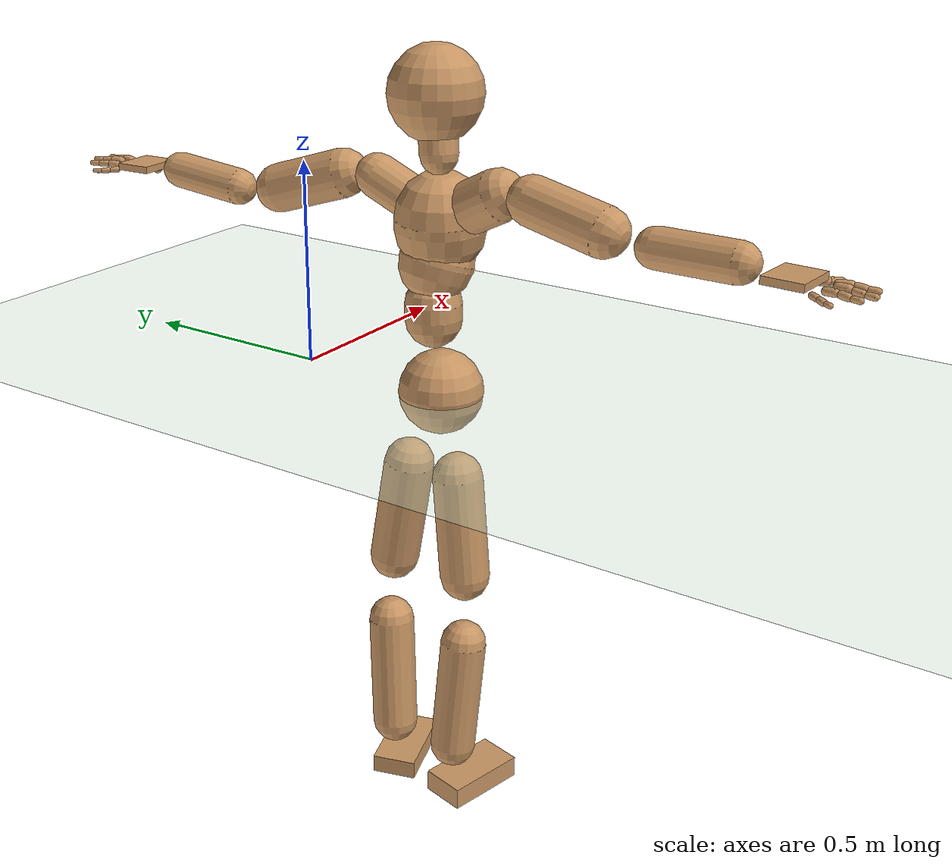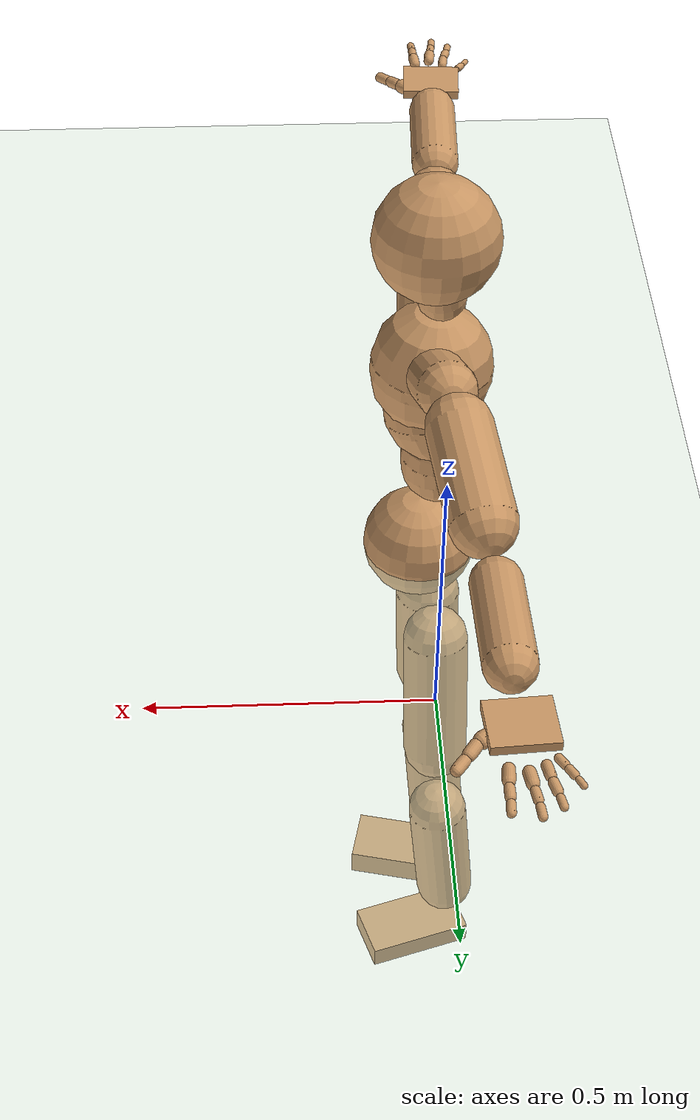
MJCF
<mujoco model="humanoid">
  <compiler coordinate="local" angle="radian"/>
  <default>
    <joint damping="0.0" armature="0.01" stiffness="0.0" limited="true"/>
    <geom conaffinity="1" condim="3" contype="7" margin="0.001" rgba="0.8 0.6 .4 1"/>
  </default>
  <asset>
    <texture type="skybox" builtin="gradient" rgb1=".4 .5 .6" rgb2="0 0 0" width="100" height="100"/>
    <texture builtin="flat" height="1278" mark="cross" markrgb="1 1 1" name="texgeom" random="0.01" rgb1="0.8 0.6 0.4" rgb2="0.8 0.6 0.4" type="cube" width="127"/>
    <texture builtin="checker" height="100" name="texplane" rgb1="0 0 0" rgb2="0.8 0.8 0.8" type="2d" width="100"/>
    <material name="MatPlane" reflectance="0.5" shininess="1" specular="1" texrepeat="60 60" texture="texplane"/>
    <material name="geom" texture="texgeom" texuniform="true"/>
  </asset>
  <worldbody>
    <light cutoff="100" diffuse="1 1 1" dir="-0 0 -1.3" directional="true" exponent="1" pos="0 0 1.3" specular=".1 .1 .1"/>
    <geom conaffinity="1" condim="3" name="floor" pos="0 0 0" rgba="0.8 0.9 0.8 1" size="100 100 .2" type="plane" material="MatPlane"/>
    <body name="Pelvis" pos="0.0009 -0.392 0.0056">
      <freejoint name="Pelvis"/>
      <geom type="sphere" contype="1" conaffinity="1" density="500" size="0.1016" pos="0.0000 0.0000 0.0000" name="Pelvis"/>
      <body name="L_Hip" pos="-0.0318 0.0552 -0.1006">
        <joint name="L_Hip_x" type="hinge" pos="0 0 0" axis="1 0 0" stiffness="800" damping="80" armature="0.02" range="-180.0000 180.0000"/>
        <joint name="L_Hip_y" type="hinge" pos="0 0 0" axis="0 1 0" stiffness="800" damping="80" armature="0.02" range="-180.0000 180.0000"/>
        <joint name="L_Hip_z" type="hinge" pos="0 0 0" axis="0 0 1" stiffness="800" damping="80" armature="0.02" range="-180.0000 180.0000"/>
        <geom type="capsule" contype="1" conaffinity="1" density="500" fromto="-0.0020 0.0137 -0.0879 -0.0078 0.0549 -0.3517" size="0.0608" name="L_Hip"/>
        <body name="L_Knee" pos="-0.0098 0.0686 -0.4396">
          <joint name="L_Knee_x" type="hinge" pos="0 0 0" axis="1 0 0" stiffness="800" damping="80" armature="0.02" range="-180.0000 180.0000"/>
          <joint name="L_Knee_y" type="hinge" pos="0 0 0" axis="0 1 0" stiffness="800" damping="80" armature="0.02" range="-180.0000 180.0000"/>
          <joint name="L_Knee_z" type="hinge" pos="0 0 0" axis="0 0 1" stiffness="800" damping="80" armature="0.02" range="-180.0000 180.0000"/>
          <geom type="capsule" contype="1" conaffinity="1" density="500" fromto="-0.0091 -0.0095 -0.0937 -0.0366 -0.0380 -0.3747" size="0.0568" name="L_Knee"/>
          <body name="L_Ankle" pos="-0.0457 -0.0475 -0.4684">
            <joint name="L_Ankle_x" type="hinge" pos="0 0 0" axis="1 0 0" stiffness="800" damping="80" armature="0.02" range="-180.0000 180.0000"/>
            <joint name="L_Ankle_y" type="hinge" pos="0 0 0" axis="0 1 0" stiffness="800" damping="80" armature="0.02" range="-180.0000 180.0000"/>
            <joint name="L_Ankle_z" type="hinge" pos="0 0 0" axis="0 0 1" stiffness="800" damping="80" armature="0.02" range="-180.0000 180.0000"/>
            <geom type="box" contype="1" conaffinity="1" density="500" pos="0.0748 0.0229 -0.0345" size="0.1034 0.0555 0.0233" quat="0.9890 0.0000 0.0000 0.1481" name="L_Ankle"/>
            <body name="L_Toe" pos="0.1496 0.0458 -0.0689">
              <joint name="L_Toe_x" type="hinge" pos="0 0 0" axis="1 0 0" stiffness="500" damping="50" armature="0.02" range="-180.0000 180.0000"/>
              <joint name="L_Toe_y" type="hinge" pos="0 0 0" axis="0 1 0" stiffness="500" damping="50" armature="0.02" range="-180.0000 180.0000"/>
              <joint name="L_Toe_z" type="hinge" pos="0 0 0" axis="0 0 1" stiffness="500" damping="50" armature="0.02" range="-180.0000 180.0000"/>
              <geom type="box" contype="1" conaffinity="1" density="500" pos="0.0000 0.0000 0.0334" size="0.0011 0.0027 0.0011" quat="0.9883 0.0000 0.0000 0.1522" name="L_Toe"/>
            </body>
          </body>
        </body>
      </body>
      <body name="R_Hip" pos="-0.0248 -0.0572 -0.1113">
        <joint name="R_Hip_x" type="hinge" pos="0 0 0" axis="1 0 0" stiffness="800" damping="80" armature="0.02" range="-180.0000 180.0000"/>
        <joint name="R_Hip_y" type="hinge" pos="0 0 0" axis="0 1 0" stiffness="800" damping="80" armature="0.02" range="-180.0000 180.0000"/>
        <joint name="R_Hip_z" type="hinge" pos="0 0 0" axis="0 0 1" stiffness="800" damping="80" armature="0.02" range="-180.0000 180.0000"/>
        <geom type="capsule" contype="1" conaffinity="1" density="500" fromto="-0.0036 -0.0103 -0.0842 -0.0142 -0.0410 -0.3369" size="0.0605" name="R_Hip"/>
        <body name="R_Knee" pos="-0.0178 -0.0513 -0.4211">
          <joint name="R_Knee_x" type="hinge" pos="0 0 0" axis="1 0 0" stiffness="800" damping="80" armature="0.02" range="-180.0000 180.0000"/>
          <joint name="R_Knee_y" type="hinge" pos="0 0 0" axis="0 1 0" stiffness="800" damping="80" armature="0.02" range="-180.0000 180.0000"/>
          <joint name="R_Knee_z" type="hinge" pos="0 0 0" axis="0 0 1" stiffness="800" damping="80" armature="0.02" range="-180.0000 180.0000"/>
          <geom type="capsule" contype="1" conaffinity="1" density="500" fromto="-0.0087 0.0038 -0.0968 -0.0350 0.0152 -0.3873" size="0.0562" name="R_Knee"/>
          <body name="R_Ankle" pos="-0.0437 0.019 -0.4842">
            <joint name="R_Ankle_x" type="hinge" pos="0 0 0" axis="1 0 0" stiffness="800" damping="80" armature="0.02" range="-180.0000 180.0000"/>
            <joint name="R_Ankle_y" type="hinge" pos="0 0 0" axis="0 1 0" stiffness="800" damping="80" armature="0.02" range="-180.0000 180.0000"/>
            <joint name="R_Ankle_z" type="hinge" pos="0 0 0" axis="0 0 1" stiffness="800" damping="80" armature="0.02" range="-180.0000 180.0000"/>
            <geom type="box" contype="1" conaffinity="1" density="500" pos="0.0781 -0.0183 -0.0338" size="0.1034 0.0555 0.0282" quat="0.9934 0.0000 0.0000 -0.1147" name="R_Ankle"/>
            <body name="R_Toe" pos="0.1562 -0.0366 -0.0675">
              <joint name="R_Toe_x" type="hinge" pos="0 0 0" axis="1 0 0" stiffness="500" damping="50" armature="0.02" range="-180.0000 180.0000"/>
              <joint name="R_Toe_y" type="hinge" pos="0 0 0" axis="0 1 0" stiffness="500" damping="50" armature="0.02" range="-180.0000 180.0000"/>
              <joint name="R_Toe_z" type="hinge" pos="0 0 0" axis="0 0 1" stiffness="500" damping="50" armature="0.02" range="-180.0000 180.0000"/>
              <geom type="box" contype="1" conaffinity="1" density="500" pos="0.0000 0.0000 0.0278" size="0.0011 0.0027 0.0011" quat="0.9942 0.0000 0.0000 -0.1073" name="R_Toe"/>
            </body>
          </body>
        </body>
      </body>
      <body name="Torso" pos="-0.0322 -0.0017 0.1203">
        <joint name="Torso_x" type="hinge" pos="0 0 0" axis="1 0 0" stiffness="1000" damping="100" armature="0.02" range="-180.0000 180.0000"/>
        <joint name="Torso_y" type="hinge" pos="0 0 0" axis="0 1 0" stiffness="1000" damping="100" armature="0.02" range="-180.0000 180.0000"/>
        <joint name="Torso_z" type="hinge" pos="0 0 0" axis="0 0 1" stiffness="1000" damping="100" armature="0.02" range="-180.0000 180.0000"/>
        <geom type="capsule" contype="1" conaffinity="1" density="500" fromto="0.0045 0.0055 0.1013 0.0030 0.0037 0.0675" size="0.067" name="Torso"/>
        <body name="Spine" pos="0.0076 0.0092 0.1688">
          <joint name="Spine_x" type="hinge" pos="0 0 0" axis="1 0 0" stiffness="1000" damping="100" armature="0.02" range="-180.0000 180.0000"/>
          <joint name="Spine_y" type="hinge" pos="0 0 0" axis="0 1 0" stiffness="1000" damping="100" armature="0.02" range="-180.0000 180.0000"/>
          <joint name="Spine_z" type="hinge" pos="0 0 0" axis="0 0 1" stiffness="1000" damping="100" armature="0.02" range="-180.0000 180.0000"/>
          <geom type="capsule" contype="1" conaffinity="1" density="500" fromto="0.0119 -0.0053 0.0384 0.0079 -0.0035 0.0256" size="0.0875" name="Spine"/>
          <body name="Chest" pos="0.0198 -0.0088 0.0639">
            <joint name="Chest_x" type="hinge" pos="0 0 0" axis="1 0 0" stiffness="1000" damping="100" armature="0.02" range="-180.0000 180.0000"/>
            <joint name="Chest_y" type="hinge" pos="0 0 0" axis="0 1 0" stiffness="1000" damping="100" armature="0.02" range="-180.0000 180.0000"/>
            <joint name="Chest_z" type="hinge" pos="0 0 0" axis="0 0 1" stiffness="1000" damping="100" armature="0.02" range="-180.0000 180.0000"/>
            <geom type="capsule" contype="1" conaffinity="1" density="500" fromto="-0.0051 -0.0018 0.0682 -0.0034 -0.0012 0.0455" size="0.1062" name="Chest"/>
            <body name="Neck" pos="-0.0196 -0.0084 0.1765">
              <joint name="Neck_x" type="hinge" pos="0 0 0" axis="1 0 0" stiffness="500" damping="50" armature="0.02" range="-180.0000 180.0000"/>
              <joint name="Neck_y" type="hinge" pos="0 0 0" axis="0 1 0" stiffness="500" damping="50" armature="0.02" range="-180.0000 180.0000"/>
              <joint name="Neck_z" type="hinge" pos="0 0 0" axis="0 0 1" stiffness="500" damping="50" armature="0.02" range="-180.0000 180.0000"/>
              <geom type="capsule" contype="1" conaffinity="1" density="500" fromto="0.0037 0.0047 0.0322 0.0146 0.0190 0.1286" size="0.0441" name="Neck"/>
              <body name="Head" pos="0.0183 0.0237 0.1608">
                <joint name="Head_x" type="hinge" pos="0 0 0" axis="1 0 0" stiffness="500" damping="50" armature="0.02" range="-180.0000 180.0000"/>
                <joint name="Head_y" type="hinge" pos="0 0 0" axis="0 1 0" stiffness="500" damping="50" armature="0.02" range="-180.0000 180.0000"/>
                <joint name="Head_z" type="hinge" pos="0 0 0" axis="0 0 1" stiffness="500" damping="50" armature="0.02" range="-180.0000 180.0000"/>
                <geom type="sphere" contype="1" conaffinity="1" density="500" size="0.1085" pos="0.0000 0.0000 0.0000" name="Head"/>
              </body>
            </body>
            <body name="L_Thorax" pos="-0.0008 0.0444 0.0822">
              <joint name="L_Thorax_x" type="hinge" pos="0 0 0" axis="1 0 0" stiffness="500" damping="50" armature="0.02" range="-180.0000 180.0000"/>
              <joint name="L_Thorax_y" type="hinge" pos="0 0 0" axis="0 1 0" stiffness="500" damping="50" armature="0.02" range="-180.0000 180.0000"/>
              <joint name="L_Thorax_z" type="hinge" pos="0 0 0" axis="0 0 1" stiffness="500" damping="50" armature="0.02" range="-180.0000 180.0000"/>
              <geom type="capsule" contype="1" conaffinity="1" density="500" fromto="-0.0035 0.0300 0.0147 -0.0138 0.1200 0.0588" size="0.0513" name="L_Thorax"/>
              <body name="L_Shoulder" pos="-0.0173 0.15 0.0735">
                <joint name="L_Shoulder_x" type="hinge" pos="0 0 0" axis="1 0 0" stiffness="500" damping="50" armature="0.02" range="-180.0000 180.0000"/>
                <joint name="L_Shoulder_y" type="hinge" pos="0 0 0" axis="0 1 0" stiffness="500" damping="50" armature="0.02" range="-180.0000 180.0000"/>
                <joint name="L_Shoulder_z" type="hinge" pos="0 0 0" axis="0 0 1" stiffness="500" damping="50" armature="0.02" range="-180.0000 180.0000"/>
                <geom type="capsule" contype="1" conaffinity="1" density="500" fromto="-0.0086 0.0570 -0.0177 -0.0343 0.2278 -0.0709" size="0.057" name="L_Shoulder"/>
                <body name="L_Elbow" pos="-0.0429 0.2848 -0.0886">
                  <joint name="L_Elbow_x" type="hinge" pos="0 0 0" axis="1 0 0" stiffness="500" damping="50" armature="0.02" range="-720.0000 720.0000"/>
                  <joint name="L_Elbow_y" type="hinge" pos="0 0 0" axis="0 1 0" stiffness="500" damping="50" armature="0.02" range="-720.0000 720.0000"/>
                  <joint name="L_Elbow_z" type="hinge" pos="0 0 0" axis="0 0 1" stiffness="500" damping="50" armature="0.02" range="-720.0000 720.0000"/>
                  <geom type="capsule" contype="1" conaffinity="1" density="500" fromto="-0.0005 0.0623 0.0057 -0.0019 0.2493 0.0228" size="0.0428" name="L_Elbow"/>
                  <body name="L_Wrist" pos="-0.0023 0.3116 0.0285">
                    <joint name="L_Wrist_x" type="hinge" pos="0 0 0" axis="1 0 0" stiffness="300" damping="30" armature="0.02" range="-180.0000 180.0000"/>
                    <joint name="L_Wrist_y" type="hinge" pos="0 0 0" axis="0 1 0" stiffness="300" damping="30" armature="0.02" range="-180.0000 180.0000"/>
                    <joint name="L_Wrist_z" type="hinge" pos="0 0 0" axis="0 0 1" stiffness="300" damping="30" armature="0.02" range="-180.0000 180.0000"/>
                    <geom type="box" contype="1" conaffinity="1" density="500" pos="-0.0033 0.0529 -0.0069" size="0.0451 0.0522 0.0083" quat="0.7287 0.0000 0.0000 -0.6848" name="L_Wrist"/>
                    <body name="L_Index1" pos="0.0217 0.1231 -0.011">
                      <joint name="L_Index1_x" type="hinge" pos="0 0 0" axis="1 0 0" stiffness="100" damping="10" armature="0.02" range="-180.0000 180.0000"/>
                      <joint name="L_Index1_y" type="hinge" pos="0 0 0" axis="0 1 0" stiffness="100" damping="10" armature="0.02" range="-180.0000 180.0000"/>
                      <joint name="L_Index1_z" type="hinge" pos="0 0 0" axis="0 0 1" stiffness="100" damping="10" armature="0.02" range="-180.0000 180.0000"/>
                      <geom type="capsule" contype="1" conaffinity="1" density="500" fromto="0.0007 0.0072 0.0003 0.0028 0.0289 0.0014" size="0.0099" name="L_Index1"/>
                      <body name="L_Index2" pos="0.0035 0.0362 0.0017">
                        <joint name="L_Index2_x" type="hinge" pos="0 0 0" axis="1 0 0" stiffness="100" damping="10" armature="0.02" range="-180.0000 180.0000"/>
                        <joint name="L_Index2_y" type="hinge" pos="0 0 0" axis="0 1 0" stiffness="100" damping="10" armature="0.02" range="-180.0000 180.0000"/>
                        <joint name="L_Index2_z" type="hinge" pos="0 0 0" axis="0 0 1" stiffness="100" damping="10" armature="0.02" range="-180.0000 180.0000"/>
                        <geom type="capsule" contype="1" conaffinity="1" density="500" fromto="-0.0001 0.0051 -0.0006 -0.0003 0.0204 -0.0023" size="0.0082" name="L_Index2"/>
                        <body name="L_Index3" pos="-0.0003 0.0256 -0.0029">
                          <joint name="L_Index3_x" type="hinge" pos="0 0 0" axis="1 0 0" stiffness="100" damping="10" armature="0.02" range="-180.0000 180.0000"/>
                          <joint name="L_Index3_y" type="hinge" pos="0 0 0" axis="0 1 0" stiffness="100" damping="10" armature="0.02" range="-180.0000 180.0000"/>
                          <joint name="L_Index3_z" type="hinge" pos="0 0 0" axis="0 0 1" stiffness="100" damping="10" armature="0.02" range="-180.0000 180.0000"/>
                          <geom type="capsule" contype="1" conaffinity="1" density="500" fromto="0.0003 0.0055 -0.0002 0.0013 0.0220 -0.0007" size="0.0071" name="L_Index3"/>
                        </body>
                      </body>
                    </body>
                    <body name="L_Middle1" pos="-0.0044 0.1323 -0.008">
                      <joint name="L_Middle1_x" type="hinge" pos="0 0 0" axis="1 0 0" stiffness="100" damping="10" armature="0.02" range="-180.0000 180.0000"/>
                      <joint name="L_Middle1_y" type="hinge" pos="0 0 0" axis="0 1 0" stiffness="100" damping="10" armature="0.02" range="-180.0000 180.0000"/>
                      <joint name="L_Middle1_z" type="hinge" pos="0 0 0" axis="0 0 1" stiffness="100" damping="10" armature="0.02" range="-180.0000 180.0000"/>
                      <geom type="capsule" contype="1" conaffinity="1" density="500" fromto="-0.0010 0.0069 0.0001 -0.0038 0.0276 0.0003" size="0.0101" name="L_Middle1"/>
                      <body name="L_Middle2" pos="-0.0048 0.0346 0.0003">
                        <joint name="L_Middle2_x" type="hinge" pos="0 0 0" axis="1 0 0" stiffness="100" damping="10" armature="0.02" range="-180.0000 180.0000"/>
                        <joint name="L_Middle2_y" type="hinge" pos="0 0 0" axis="0 1 0" stiffness="100" damping="10" armature="0.02" range="-180.0000 180.0000"/>
                        <joint name="L_Middle2_z" type="hinge" pos="0 0 0" axis="0 0 1" stiffness="100" damping="10" armature="0.02" range="-180.0000 180.0000"/>
                        <geom type="capsule" contype="1" conaffinity="1" density="500" fromto="-0.0009 0.0053 -0.0006 -0.0038 0.0213 -0.0022" size="0.0076" name="L_Middle2"/>
                        <body name="L_Middle3" pos="-0.0047 0.0266 -0.0028">
                          <joint name="L_Middle3_x" type="hinge" pos="0 0 0" axis="1 0 0" stiffness="100" damping="10" armature="0.02" range="-180.0000 180.0000"/>
                          <joint name="L_Middle3_y" type="hinge" pos="0 0 0" axis="0 1 0" stiffness="100" damping="10" armature="0.02" range="-180.0000 180.0000"/>
                          <joint name="L_Middle3_z" type="hinge" pos="0 0 0" axis="0 0 1" stiffness="100" damping="10" armature="0.02" range="-180.0000 180.0000"/>
                          <geom type="capsule" contype="1" conaffinity="1" density="500" fromto="-0.0005 0.0057 -0.0002 -0.0022 0.0229 -0.0006" size="0.0069" name="L_Middle3"/>
                        </body>
                      </body>
                    </body>
                    <body name="L_Pinky1" pos="-0.049 0.1036 -0.0169">
                      <joint name="L_Pinky1_x" type="hinge" pos="0 0 0" axis="1 0 0" stiffness="100" damping="10" armature="0.02" range="-180.0000 180.0000"/>
                      <joint name="L_Pinky1_y" type="hinge" pos="0 0 0" axis="0 1 0" stiffness="100" damping="10" armature="0.02" range="-180.0000 180.0000"/>
                      <joint name="L_Pinky1_z" type="hinge" pos="0 0 0" axis="0 0 1" stiffness="100" damping="10" armature="0.02" range="-180.0000 180.0000"/>
                      <geom type="capsule" contype="1" conaffinity="1" density="500" fromto="-0.0025 0.0037 -0.0004 -0.0099 0.0147 -0.0015" size="0.0072" name="L_Pinky1"/>
                      <body name="L_Pinky2" pos="-0.0124 0.0184 -0.0019">
                        <joint name="L_Pinky2_x" type="hinge" pos="0 0 0" axis="1 0 0" stiffness="100" damping="10" armature="0.02" range="-180.0000 180.0000"/>
                        <joint name="L_Pinky2_y" type="hinge" pos="0 0 0" axis="0 1 0" stiffness="100" damping="10" armature="0.02" range="-180.0000 180.0000"/>
                        <joint name="L_Pinky2_z" type="hinge" pos="0 0 0" axis="0 0 1" stiffness="100" damping="10" armature="0.02" range="-180.0000 180.0000"/>
                        <geom type="capsule" contype="1" conaffinity="1" density="500" fromto="-0.0024 0.0036 -0.0004 -0.0095 0.0143 -0.0017" size="0.0069" name="L_Pinky2"/>
                        <body name="L_Pinky3" pos="-0.0119 0.0179 -0.0021">
                          <joint name="L_Pinky3_x" type="hinge" pos="0 0 0" axis="1 0 0" stiffness="100" damping="10" armature="0.02" range="-180.0000 180.0000"/>
                          <joint name="L_Pinky3_y" type="hinge" pos="0 0 0" axis="0 1 0" stiffness="100" damping="10" armature="0.02" range="-180.0000 180.0000"/>
                          <joint name="L_Pinky3_z" type="hinge" pos="0 0 0" axis="0 0 1" stiffness="100" damping="10" armature="0.02" range="-180.0000 180.0000"/>
                          <geom type="capsule" contype="1" conaffinity="1" density="500" fromto="-0.0020 0.0040 -0.0000 -0.0079 0.0159 -0.0001" size="0.0053" name="L_Pinky3"/>
                        </body>
                      </body>
                    </body>
                    <body name="L_Ring1" pos="-0.0305 0.1189 -0.011">
                      <joint name="L_Ring1_x" type="hinge" pos="0 0 0" axis="1 0 0" stiffness="100" damping="10" armature="0.02" range="-180.0000 180.0000"/>
                      <joint name="L_Ring1_y" type="hinge" pos="0 0 0" axis="0 1 0" stiffness="100" damping="10" armature="0.02" range="-180.0000 180.0000"/>
                      <joint name="L_Ring1_z" type="hinge" pos="0 0 0" axis="0 0 1" stiffness="100" damping="10" armature="0.02" range="-180.0000 180.0000"/>
                      <geom type="capsule" contype="1" conaffinity="1" density="500" fromto="-0.0011 0.0064 0.0002 -0.0043 0.0257 0.0007" size="0.0086" name="L_Ring1"/>
                      <body name="L_Ring2" pos="-0.0054 0.0322 0.0009">
                        <joint name="L_Ring2_x" type="hinge" pos="0 0 0" axis="1 0 0" stiffness="100" damping="10" armature="0.02" range="-180.0000 180.0000"/>
                        <joint name="L_Ring2_y" type="hinge" pos="0 0 0" axis="0 1 0" stiffness="100" damping="10" armature="0.02" range="-180.0000 180.0000"/>
                        <joint name="L_Ring2_z" type="hinge" pos="0 0 0" axis="0 0 1" stiffness="100" damping="10" armature="0.02" range="-180.0000 180.0000"/>
                        <geom type="capsule" contype="1" conaffinity="1" density="500" fromto="-0.0015 0.0052 -0.0005 -0.0059 0.0207 -0.0018" size="0.0081" name="L_Ring2"/>
                        <body name="L_Ring3" pos="-0.0074 0.0258 -0.0023">
                          <joint name="L_Ring3_x" type="hinge" pos="0 0 0" axis="1 0 0" stiffness="100" damping="10" armature="0.02" range="-180.0000 180.0000"/>
                          <joint name="L_Ring3_y" type="hinge" pos="0 0 0" axis="0 1 0" stiffness="100" damping="10" armature="0.02" range="-180.0000 180.0000"/>
                          <joint name="L_Ring3_z" type="hinge" pos="0 0 0" axis="0 0 1" stiffness="100" damping="10" armature="0.02" range="-180.0000 180.0000"/>
                          <geom type="capsule" contype="1" conaffinity="1" density="500" fromto="-0.0011 0.0056 -0.0001 -0.0043 0.0223 -0.0002" size="0.0064" name="L_Ring3"/>
                        </body>
                      </body>
                    </body>
                    <body name="L_Thumb1" pos="0.0294 0.0509 -0.0224">
                      <joint name="L_Thumb1_x" type="hinge" pos="0 0 0" axis="1 0 0" stiffness="100" damping="10" armature="0.02" range="-180.0000 180.0000"/>
                      <joint name="L_Thumb1_y" type="hinge" pos="0 0 0" axis="0 1 0" stiffness="100" damping="10" armature="0.02" range="-180.0000 180.0000"/>
                      <joint name="L_Thumb1_z" type="hinge" pos="0 0 0" axis="0 0 1" stiffness="100" damping="10" armature="0.02" range="-180.0000 180.0000"/>
                      <geom type="capsule" contype="1" conaffinity="1" density="500" fromto="0.0058 0.0040 0.0003 0.0234 0.0159 0.0012" size="0.0138" name="L_Thumb1"/>
                      <body name="L_Thumb2" pos="0.0292 0.0199 0.0015">
                        <joint name="L_Thumb2_x" type="hinge" pos="0 0 0" axis="1 0 0" stiffness="100" damping="10" armature="0.02" range="-180.0000 180.0000"/>
                        <joint name="L_Thumb2_y" type="hinge" pos="0 0 0" axis="0 1 0" stiffness="100" damping="10" armature="0.02" range="-180.0000 180.0000"/>
                        <joint name="L_Thumb2_z" type="hinge" pos="0 0 0" axis="0 0 1" stiffness="100" damping="10" armature="0.02" range="-180.0000 180.0000"/>
                        <geom type="capsule" contype="1" conaffinity="1" density="500" fromto="0.0037 0.0048 -0.0010 0.0146 0.0191 -0.0039" size="0.0108" name="L_Thumb2"/>
                        <body name="L_Thumb3" pos="0.0183 0.0238 -0.0049">
                          <joint name="L_Thumb3_x" type="hinge" pos="0 0 0" axis="1 0 0" stiffness="100" damping="10" armature="0.02" range="-180.0000 180.0000"/>
                          <joint name="L_Thumb3_y" type="hinge" pos="0 0 0" axis="0 1 0" stiffness="100" damping="10" armature="0.02" range="-180.0000 180.0000"/>
                          <joint name="L_Thumb3_z" type="hinge" pos="0 0 0" axis="0 0 1" stiffness="100" damping="10" armature="0.02" range="-180.0000 180.0000"/>
                          <geom type="capsule" contype="1" conaffinity="1" density="500" fromto="0.0041 0.0052 -0.0006 0.0162 0.0207 -0.0023" size="0.0097" name="L_Thumb3"/>
                        </body>
                      </body>
                    </body>
                  </body>
                </body>
              </body>
            </body>
            <body name="R_Thorax" pos="-0.0051 -0.0452 0.0825">
              <joint name="R_Thorax_x" type="hinge" pos="0 0 0" axis="1 0 0" stiffness="500" damping="50" armature="0.02" range="-180.0000 180.0000"/>
              <joint name="R_Thorax_y" type="hinge" pos="0 0 0" axis="0 1 0" stiffness="500" damping="50" armature="0.02" range="-180.0000 180.0000"/>
              <joint name="R_Thorax_z" type="hinge" pos="0 0 0" axis="0 0 1" stiffness="500" damping="50" armature="0.02" range="-180.0000 180.0000"/>
              <geom type="capsule" contype="1" conaffinity="1" density="500" fromto="-0.0022 -0.0279 0.0143 -0.0087 -0.1117 0.0573" size="0.0601" name="R_Thorax"/>
              <body name="R_Shoulder" pos="-0.0109 -0.1396 0.0716">
                <joint name="R_Shoulder_x" type="hinge" pos="0 0 0" axis="1 0 0" stiffness="500" damping="50" armature="0.02" range="-180.0000 180.0000"/>
                <joint name="R_Shoulder_y" type="hinge" pos="0 0 0" axis="0 1 0" stiffness="500" damping="50" armature="0.02" range="-180.0000 180.0000"/>
                <joint name="R_Shoulder_z" type="hinge" pos="0 0 0" axis="0 0 1" stiffness="500" damping="50" armature="0.02" range="-180.0000 180.0000"/>
                <geom type="capsule" contype="1" conaffinity="1" density="500" fromto="-0.0067 -0.0610 -0.0115 -0.0267 -0.2440 -0.0460" size="0.056" name="R_Shoulder"/>
                <body name="R_Elbow" pos="-0.0333 -0.3049 -0.0575">
                  <joint name="R_Elbow_x" type="hinge" pos="0 0 0" axis="1 0 0" stiffness="500" damping="50" armature="0.02" range="-720.0000 720.0000"/>
                  <joint name="R_Elbow_y" type="hinge" pos="0 0 0" axis="0 1 0" stiffness="500" damping="50" armature="0.02" range="-720.0000 720.0000"/>
                  <joint name="R_Elbow_z" type="hinge" pos="0 0 0" axis="0 0 1" stiffness="500" damping="50" armature="0.02" range="-720.0000 720.0000"/>
                  <geom type="capsule" contype="1" conaffinity="1" density="500" fromto="-0.0026 -0.0602 0.0006 -0.0105 -0.2408 0.0022" size="0.044" name="R_Elbow"/>
                  <body name="R_Wrist" pos="-0.0131 -0.301 0.0028">
                    <joint name="R_Wrist_x" type="hinge" pos="0 0 0" axis="1 0 0" stiffness="300" damping="30" armature="0.02" range="-180.0000 180.0000"/>
                    <joint name="R_Wrist_y" type="hinge" pos="0 0 0" axis="0 1 0" stiffness="300" damping="30" armature="0.02" range="-180.0000 180.0000"/>
                    <joint name="R_Wrist_z" type="hinge" pos="0 0 0" axis="0 0 1" stiffness="300" damping="30" armature="0.02" range="-180.0000 180.0000"/>
                    <geom type="box" contype="1" conaffinity="1" density="500" pos="-0.0037 -0.0525 -0.0087" size="0.0451 0.054 0.0085" quat="0.7316 0.0000 0.0000 0.6817" name="R_Wrist"/>
                    <body name="R_Index1" pos="0.0209 -0.1225 -0.0146">
                      <joint name="R_Index1_x" type="hinge" pos="0 0 0" axis="1 0 0" stiffness="100" damping="10" armature="0.02" range="-180.0000 180.0000"/>
                      <joint name="R_Index1_y" type="hinge" pos="0 0 0" axis="0 1 0" stiffness="100" damping="10" armature="0.02" range="-180.0000 180.0000"/>
                      <joint name="R_Index1_z" type="hinge" pos="0 0 0" axis="0 0 1" stiffness="100" damping="10" armature="0.02" range="-180.0000 180.0000"/>
                      <geom type="capsule" contype="1" conaffinity="1" density="500" fromto="0.0007 -0.0072 0.0003 0.0028 -0.0289 0.0014" size="0.0099" name="R_Index1"/>
                      <body name="R_Index2" pos="0.0035 -0.0362 0.0017">
                        <joint name="R_Index2_x" type="hinge" pos="0 0 0" axis="1 0 0" stiffness="100" damping="10" armature="0.02" range="-180.0000 180.0000"/>
                        <joint name="R_Index2_y" type="hinge" pos="0 0 0" axis="0 1 0" stiffness="100" damping="10" armature="0.02" range="-180.0000 180.0000"/>
                        <joint name="R_Index2_z" type="hinge" pos="0 0 0" axis="0 0 1" stiffness="100" damping="10" armature="0.02" range="-180.0000 180.0000"/>
                        <geom type="capsule" contype="1" conaffinity="1" density="500" fromto="-0.0001 -0.0051 -0.0006 -0.0003 -0.0204 -0.0023" size="0.0082" name="R_Index2"/>
                        <body name="R_Index3" pos="-0.0003 -0.0256 -0.0029">
                          <joint name="R_Index3_x" type="hinge" pos="0 0 0" axis="1 0 0" stiffness="100" damping="10" armature="0.02" range="-180.0000 180.0000"/>
                          <joint name="R_Index3_y" type="hinge" pos="0 0 0" axis="0 1 0" stiffness="100" damping="10" armature="0.02" range="-180.0000 180.0000"/>
                          <joint name="R_Index3_z" type="hinge" pos="0 0 0" axis="0 0 1" stiffness="100" damping="10" armature="0.02" range="-180.0000 180.0000"/>
                          <geom type="capsule" contype="1" conaffinity="1" density="500" fromto="0.0003 -0.0047 -0.0002 0.0013 -0.0188 -0.0007" size="0.0073" name="R_Index3"/>
                        </body>
                      </body>
                    </body>
                    <body name="R_Middle1" pos="-0.0053 -0.1316 -0.0116">
                      <joint name="R_Middle1_x" type="hinge" pos="0 0 0" axis="1 0 0" stiffness="100" damping="10" armature="0.02" range="-180.0000 180.0000"/>
                      <joint name="R_Middle1_y" type="hinge" pos="0 0 0" axis="0 1 0" stiffness="100" damping="10" armature="0.02" range="-180.0000 180.0000"/>
                      <joint name="R_Middle1_z" type="hinge" pos="0 0 0" axis="0 0 1" stiffness="100" damping="10" armature="0.02" range="-180.0000 180.0000"/>
                      <geom type="capsule" contype="1" conaffinity="1" density="500" fromto="-0.0010 -0.0069 0.0001 -0.0038 -0.0276 0.0003" size="0.0101" name="R_Middle1"/>
                      <body name="R_Middle2" pos="-0.0048 -0.0346 0.0003">
                        <joint name="R_Middle2_x" type="hinge" pos="0 0 0" axis="1 0 0" stiffness="100" damping="10" armature="0.02" range="-180.0000 180.0000"/>
                        <joint name="R_Middle2_y" type="hinge" pos="0 0 0" axis="0 1 0" stiffness="100" damping="10" armature="0.02" range="-180.0000 180.0000"/>
                        <joint name="R_Middle2_z" type="hinge" pos="0 0 0" axis="0 0 1" stiffness="100" damping="10" armature="0.02" range="-180.0000 180.0000"/>
                        <geom type="capsule" contype="1" conaffinity="1" density="500" fromto="-0.0009 -0.0053 -0.0006 -0.0038 -0.0213 -0.0022" size="0.0076" name="R_Middle2"/>
                        <body name="R_Middle3" pos="-0.0047 -0.0266 -0.0028">
                          <joint name="R_Middle3_x" type="hinge" pos="0 0 0" axis="1 0 0" stiffness="100" damping="10" armature="0.02" range="-180.0000 180.0000"/>
                          <joint name="R_Middle3_y" type="hinge" pos="0 0 0" axis="0 1 0" stiffness="100" damping="10" armature="0.02" range="-180.0000 180.0000"/>
                          <joint name="R_Middle3_z" type="hinge" pos="0 0 0" axis="0 0 1" stiffness="100" damping="10" armature="0.02" range="-180.0000 180.0000"/>
                          <geom type="capsule" contype="1" conaffinity="1" density="500" fromto="-0.0005 -0.0049 -0.0002 -0.0022 -0.0197 -0.0006" size="0.0071" name="R_Middle3"/>
                        </body>
                      </body>
                    </body>
                    <body name="R_Pinky1" pos="-0.0499 -0.1029 -0.0205">
                      <joint name="R_Pinky1_x" type="hinge" pos="0 0 0" axis="1 0 0" stiffness="100" damping="10" armature="0.02" range="-180.0000 180.0000"/>
                      <joint name="R_Pinky1_y" type="hinge" pos="0 0 0" axis="0 1 0" stiffness="100" damping="10" armature="0.02" range="-180.0000 180.0000"/>
                      <joint name="R_Pinky1_z" type="hinge" pos="0 0 0" axis="0 0 1" stiffness="100" damping="10" armature="0.02" range="-180.0000 180.0000"/>
                      <geom type="capsule" contype="1" conaffinity="1" density="500" fromto="-0.0025 -0.0037 -0.0004 -0.0099 -0.0147 -0.0015" size="0.0072" name="R_Pinky1"/>
                      <body name="R_Pinky2" pos="-0.0124 -0.0184 -0.0019">
                        <joint name="R_Pinky2_x" type="hinge" pos="0 0 0" axis="1 0 0" stiffness="100" damping="10" armature="0.02" range="-180.0000 180.0000"/>
                        <joint name="R_Pinky2_y" type="hinge" pos="0 0 0" axis="0 1 0" stiffness="100" damping="10" armature="0.02" range="-180.0000 180.0000"/>
                        <joint name="R_Pinky2_z" type="hinge" pos="0 0 0" axis="0 0 1" stiffness="100" damping="10" armature="0.02" range="-180.0000 180.0000"/>
                        <geom type="capsule" contype="1" conaffinity="1" density="500" fromto="-0.0024 -0.0036 -0.0004 -0.0095 -0.0143 -0.0017" size="0.0069" name="R_Pinky2"/>
                        <body name="R_Pinky3" pos="-0.0119 -0.0179 -0.0021">
                          <joint name="R_Pinky3_x" type="hinge" pos="0 0 0" axis="1 0 0" stiffness="100" damping="10" armature="0.02" range="-180.0000 180.0000"/>
                          <joint name="R_Pinky3_y" type="hinge" pos="0 0 0" axis="0 1 0" stiffness="100" damping="10" armature="0.02" range="-180.0000 180.0000"/>
                          <joint name="R_Pinky3_z" type="hinge" pos="0 0 0" axis="0 0 1" stiffness="100" damping="10" armature="0.02" range="-180.0000 180.0000"/>
                          <geom type="capsule" contype="1" conaffinity="1" density="500" fromto="-0.0020 -0.0032 -0.0000 -0.0079 -0.0127 -0.0001" size="0.0056" name="R_Pinky3"/>
                        </body>
                      </body>
                    </body>
                    <body name="R_Ring1" pos="-0.0314 -0.1182 -0.0146">
                      <joint name="R_Ring1_x" type="hinge" pos="0 0 0" axis="1 0 0" stiffness="100" damping="10" armature="0.02" range="-180.0000 180.0000"/>
                      <joint name="R_Ring1_y" type="hinge" pos="0 0 0" axis="0 1 0" stiffness="100" damping="10" armature="0.02" range="-180.0000 180.0000"/>
                      <joint name="R_Ring1_z" type="hinge" pos="0 0 0" axis="0 0 1" stiffness="100" damping="10" armature="0.02" range="-180.0000 180.0000"/>
                      <geom type="capsule" contype="1" conaffinity="1" density="500" fromto="-0.0011 -0.0064 0.0002 -0.0043 -0.0257 0.0007" size="0.0086" name="R_Ring1"/>
                      <body name="R_Ring2" pos="-0.0054 -0.0322 0.0009">
                        <joint name="R_Ring2_x" type="hinge" pos="0 0 0" axis="1 0 0" stiffness="100" damping="10" armature="0.02" range="-180.0000 180.0000"/>
                        <joint name="R_Ring2_y" type="hinge" pos="0 0 0" axis="0 1 0" stiffness="100" damping="10" armature="0.02" range="-180.0000 180.0000"/>
                        <joint name="R_Ring2_z" type="hinge" pos="0 0 0" axis="0 0 1" stiffness="100" damping="10" armature="0.02" range="-180.0000 180.0000"/>
                        <geom type="capsule" contype="1" conaffinity="1" density="500" fromto="-0.0015 -0.0052 -0.0005 -0.0059 -0.0207 -0.0018" size="0.0081" name="R_Ring2"/>
                        <body name="R_Ring3" pos="-0.0074 -0.0258 -0.0023">
                          <joint name="R_Ring3_x" type="hinge" pos="0 0 0" axis="1 0 0" stiffness="100" damping="10" armature="0.02" range="-180.0000 180.0000"/>
                          <joint name="R_Ring3_y" type="hinge" pos="0 0 0" axis="0 1 0" stiffness="100" damping="10" armature="0.02" range="-180.0000 180.0000"/>
                          <joint name="R_Ring3_z" type="hinge" pos="0 0 0" axis="0 0 1" stiffness="100" damping="10" armature="0.02" range="-180.0000 180.0000"/>
                          <geom type="capsule" contype="1" conaffinity="1" density="500" fromto="-0.0011 -0.0048 -0.0001 -0.0043 -0.0191 -0.0002" size="0.0067" name="R_Ring3"/>
                        </body>
                      </body>
                    </body>
                    <body name="R_Thumb1" pos="0.0285 -0.0502 -0.026">
                      <joint name="R_Thumb1_x" type="hinge" pos="0 0 0" axis="1 0 0" stiffness="100" damping="10" armature="0.02" range="-180.0000 180.0000"/>
                      <joint name="R_Thumb1_y" type="hinge" pos="0 0 0" axis="0 1 0" stiffness="100" damping="10" armature="0.02" range="-180.0000 180.0000"/>
                      <joint name="R_Thumb1_z" type="hinge" pos="0 0 0" axis="0 0 1" stiffness="100" damping="10" armature="0.02" range="-180.0000 180.0000"/>
                      <geom type="capsule" contype="1" conaffinity="1" density="500" fromto="0.0058 -0.0040 0.0003 0.0234 -0.0159 0.0012" size="0.0138" name="R_Thumb1"/>
                      <body name="R_Thumb2" pos="0.0292 -0.0199 0.0015">
                        <joint name="R_Thumb2_x" type="hinge" pos="0 0 0" axis="1 0 0" stiffness="100" damping="10" armature="0.02" range="-180.0000 180.0000"/>
                        <joint name="R_Thumb2_y" type="hinge" pos="0 0 0" axis="0 1 0" stiffness="100" damping="10" armature="0.02" range="-180.0000 180.0000"/>
                        <joint name="R_Thumb2_z" type="hinge" pos="0 0 0" axis="0 0 1" stiffness="100" damping="10" armature="0.02" range="-180.0000 180.0000"/>
                        <geom type="capsule" contype="1" conaffinity="1" density="500" fromto="0.0037 -0.0048 -0.0010 0.0146 -0.0191 -0.0039" size="0.0108" name="R_Thumb2"/>
                        <body name="R_Thumb3" pos="0.0183 -0.0238 -0.0049">
                          <joint name="R_Thumb3_x" type="hinge" pos="0 0 0" axis="1 0 0" stiffness="100" damping="10" armature="0.02" range="-180.0000 180.0000"/>
                          <joint name="R_Thumb3_y" type="hinge" pos="0 0 0" axis="0 1 0" stiffness="100" damping="10" armature="0.02" range="-180.0000 180.0000"/>
                          <joint name="R_Thumb3_z" type="hinge" pos="0 0 0" axis="0 0 1" stiffness="100" damping="10" armature="0.02" range="-180.0000 180.0000"/>
                          <geom type="capsule" contype="1" conaffinity="1" density="500" fromto="0.0041 -0.0044 -0.0006 0.0162 -0.0175 -0.0023" size="0.0099" name="R_Thumb3"/>
                        </body>
                      </body>
                    </body>
                  </body>
                </body>
              </body>
            </body>
          </body>
        </body>
      </body>
    </body>
  </worldbody>
  <actuator>
    <motor name="L_Hip_x" joint="L_Hip_x" gear="500"/>
    <motor name="L_Hip_y" joint="L_Hip_y" gear="500"/>
    <motor name="L_Hip_z" joint="L_Hip_z" gear="500"/>
    <motor name="L_Knee_x" joint="L_Knee_x" gear="500"/>
    <motor name="L_Knee_y" joint="L_Knee_y" gear="500"/>
    <motor name="L_Knee_z" joint="L_Knee_z" gear="500"/>
    <motor name="L_Ankle_x" joint="L_Ankle_x" gear="500"/>
    <motor name="L_Ankle_y" joint="L_Ankle_y" gear="500"/>
    <motor name="L_Ankle_z" joint="L_Ankle_z" gear="500"/>
    <motor name="L_Toe_x" joint="L_Toe_x" gear="500"/>
    <motor name="L_Toe_y" joint="L_Toe_y" gear="500"/>
    <motor name="L_Toe_z" joint="L_Toe_z" gear="500"/>
    <motor name="R_Hip_x" joint="R_Hip_x" gear="500"/>
    <motor name="R_Hip_y" joint="R_Hip_y" gear="500"/>
    <motor name="R_Hip_z" joint="R_Hip_z" gear="500"/>
    <motor name="R_Knee_x" joint="R_Knee_x" gear="500"/>
    <motor name="R_Knee_y" joint="R_Knee_y" gear="500"/>
    <motor name="R_Knee_z" joint="R_Knee_z" gear="500"/>
    <motor name="R_Ankle_x" joint="R_Ankle_x" gear="500"/>
    <motor name="R_Ankle_y" joint="R_Ankle_y" gear="500"/>
    <motor name="R_Ankle_z" joint="R_Ankle_z" gear="500"/>
    <motor name="R_Toe_x" joint="R_Toe_x" gear="500"/>
    <motor name="R_Toe_y" joint="R_Toe_y" gear="500"/>
    <motor name="R_Toe_z" joint="R_Toe_z" gear="500"/>
    <motor name="Torso_x" joint="Torso_x" gear="500"/>
    <motor name="Torso_y" joint="Torso_y" gear="500"/>
    <motor name="Torso_z" joint="Torso_z" gear="500"/>
    <motor name="Spine_x" joint="Spine_x" gear="500"/>
    <motor name="Spine_y" joint="Spine_y" gear="500"/>
    <motor name="Spine_z" joint="Spine_z" gear="500"/>
    <motor name="Chest_x" joint="Chest_x" gear="500"/>
    <motor name="Chest_y" joint="Chest_y" gear="500"/>
    <motor name="Chest_z" joint="Chest_z" gear="500"/>
    <motor name="Neck_x" joint="Neck_x" gear="500"/>
    <motor name="Neck_y" joint="Neck_y" gear="500"/>
    <motor name="Neck_z" joint="Neck_z" gear="500"/>
    <motor name="Head_x" joint="Head_x" gear="500"/>
    <motor name="Head_y" joint="Head_y" gear="500"/>
    <motor name="Head_z" joint="Head_z" gear="500"/>
    <motor name="L_Thorax_x" joint="L_Thorax_x" gear="500"/>
    <motor name="L_Thorax_y" joint="L_Thorax_y" gear="500"/>
    <motor name="L_Thorax_z" joint="L_Thorax_z" gear="500"/>
    <motor name="L_Shoulder_x" joint="L_Shoulder_x" gear="500"/>
    <motor name="L_Shoulder_y" joint="L_Shoulder_y" gear="500"/>
    <motor name="L_Shoulder_z" joint="L_Shoulder_z" gear="500"/>
    <motor name="L_Elbow_x" joint="L_Elbow_x" gear="500"/>
    <motor name="L_Elbow_y" joint="L_Elbow_y" gear="500"/>
    <motor name="L_Elbow_z" joint="L_Elbow_z" gear="500"/>
    <motor name="L_Wrist_x" joint="L_Wrist_x" gear="500"/>
    <motor name="L_Wrist_y" joint="L_Wrist_y" gear="500"/>
    <motor name="L_Wrist_z" joint="L_Wrist_z" gear="500"/>
    <motor name="L_Index1_x" joint="L_Index1_x" gear="500"/>
    <motor name="L_Index1_y" joint="L_Index1_y" gear="500"/>
    <motor name="L_Index1_z" joint="L_Index1_z" gear="500"/>
    <motor name="L_Index2_x" joint="L_Index2_x" gear="500"/>
    <motor name="L_Index2_y" joint="L_Index2_y" gear="500"/>
    <motor name="L_Index2_z" joint="L_Index2_z" gear="500"/>
    <motor name="L_Index3_x" joint="L_Index3_x" gear="500"/>
    <motor name="L_Index3_y" joint="L_Index3_y" gear="500"/>
    <motor name="L_Index3_z" joint="L_Index3_z" gear="500"/>
    <motor name="L_Middle1_x" joint="L_Middle1_x" gear="500"/>
    <motor name="L_Middle1_y" joint="L_Middle1_y" gear="500"/>
    <motor name="L_Middle1_z" joint="L_Middle1_z" gear="500"/>
    <motor name="L_Middle2_x" joint="L_Middle2_x" gear="500"/>
    <motor name="L_Middle2_y" joint="L_Middle2_y" gear="500"/>
    <motor name="L_Middle2_z" joint="L_Middle2_z" gear="500"/>
    <motor name="L_Middle3_x" joint="L_Middle3_x" gear="500"/>
    <motor name="L_Middle3_y" joint="L_Middle3_y" gear="500"/>
    <motor name="L_Middle3_z" joint="L_Middle3_z" gear="500"/>
    <motor name="L_Pinky1_x" joint="L_Pinky1_x" gear="500"/>
    <motor name="L_Pinky1_y" joint="L_Pinky1_y" gear="500"/>
    <motor name="L_Pinky1_z" joint="L_Pinky1_z" gear="500"/>
    <motor name="L_Pinky2_x" joint="L_Pinky2_x" gear="500"/>
    <motor name="L_Pinky2_y" joint="L_Pinky2_y" gear="500"/>
    <motor name="L_Pinky2_z" joint="L_Pinky2_z" gear="500"/>
    <motor name="L_Pinky3_x" joint="L_Pinky3_x" gear="500"/>
    <motor name="L_Pinky3_y" joint="L_Pinky3_y" gear="500"/>
    <motor name="L_Pinky3_z" joint="L_Pinky3_z" gear="500"/>
    <motor name="L_Ring1_x" joint="L_Ring1_x" gear="500"/>
    <motor name="L_Ring1_y" joint="L_Ring1_y" gear="500"/>
    <motor name="L_Ring1_z" joint="L_Ring1_z" gear="500"/>
    <motor name="L_Ring2_x" joint="L_Ring2_x" gear="500"/>
    <motor name="L_Ring2_y" joint="L_Ring2_y" gear="500"/>
    <motor name="L_Ring2_z" joint="L_Ring2_z" gear="500"/>
    <motor name="L_Ring3_x" joint="L_Ring3_x" gear="500"/>
    <motor name="L_Ring3_y" joint="L_Ring3_y" gear="500"/>
    <motor name="L_Ring3_z" joint="L_Ring3_z" gear="500"/>
    <motor name="L_Thumb1_x" joint="L_Thumb1_x" gear="500"/>
    <motor name="L_Thumb1_y" joint="L_Thumb1_y" gear="500"/>
    <motor name="L_Thumb1_z" joint="L_Thumb1_z" gear="500"/>
    <motor name="L_Thumb2_x" joint="L_Thumb2_x" gear="500"/>
    <motor name="L_Thumb2_y" joint="L_Thumb2_y" gear="500"/>
    <motor name="L_Thumb2_z" joint="L_Thumb2_z" gear="500"/>
    <motor name="L_Thumb3_x" joint="L_Thumb3_x" gear="500"/>
    <motor name="L_Thumb3_y" joint="L_Thumb3_y" gear="500"/>
    <motor name="L_Thumb3_z" joint="L_Thumb3_z" gear="500"/>
    <motor name="R_Thorax_x" joint="R_Thorax_x" gear="500"/>
    <motor name="R_Thorax_y" joint="R_Thorax_y" gear="500"/>
    <motor name="R_Thorax_z" joint="R_Thorax_z" gear="500"/>
    <motor name="R_Shoulder_x" joint="R_Shoulder_x" gear="500"/>
    <motor name="R_Shoulder_y" joint="R_Shoulder_y" gear="500"/>
    <motor name="R_Shoulder_z" joint="R_Shoulder_z" gear="500"/>
    <motor name="R_Elbow_x" joint="R_Elbow_x" gear="500"/>
    <motor name="R_Elbow_y" joint="R_Elbow_y" gear="500"/>
    <motor name="R_Elbow_z" joint="R_Elbow_z" gear="500"/>
    <motor name="R_Wrist_x" joint="R_Wrist_x" gear="500"/>
    <motor name="R_Wrist_y" joint="R_Wrist_y" gear="500"/>
    <motor name="R_Wrist_z" joint="R_Wrist_z" gear="500"/>
    <motor name="R_Index1_x" joint="R_Index1_x" gear="500"/>
    <motor name="R_Index1_y" joint="R_Index1_y" gear="500"/>
    <motor name="R_Index1_z" joint="R_Index1_z" gear="500"/>
    <motor name="R_Index2_x" joint="R_Index2_x" gear="500"/>
    <motor name="R_Index2_y" joint="R_Index2_y" gear="500"/>
    <motor name="R_Index2_z" joint="R_Index2_z" gear="500"/>
    <motor name="R_Index3_x" joint="R_Index3_x" gear="500"/>
    <motor name="R_Index3_y" joint="R_Index3_y" gear="500"/>
    <motor name="R_Index3_z" joint="R_Index3_z" gear="500"/>
    <motor name="R_Middle1_x" joint="R_Middle1_x" gear="500"/>
    <motor name="R_Middle1_y" joint="R_Middle1_y" gear="500"/>
    <motor name="R_Middle1_z" joint="R_Middle1_z" gear="500"/>
    <motor name="R_Middle2_x" joint="R_Middle2_x" gear="500"/>
    <motor name="R_Middle2_y" joint="R_Middle2_y" gear="500"/>
    <motor name="R_Middle2_z" joint="R_Middle2_z" gear="500"/>
    <motor name="R_Middle3_x" joint="R_Middle3_x" gear="500"/>
    <motor name="R_Middle3_y" joint="R_Middle3_y" gear="500"/>
    <motor name="R_Middle3_z" joint="R_Middle3_z" gear="500"/>
    <motor name="R_Pinky1_x" joint="R_Pinky1_x" gear="500"/>
    <motor name="R_Pinky1_y" joint="R_Pinky1_y" gear="500"/>
    <motor name="R_Pinky1_z" joint="R_Pinky1_z" gear="500"/>
    <motor name="R_Pinky2_x" joint="R_Pinky2_x" gear="500"/>
    <motor name="R_Pinky2_y" joint="R_Pinky2_y" gear="500"/>
    <motor name="R_Pinky2_z" joint="R_Pinky2_z" gear="500"/>
    <motor name="R_Pinky3_x" joint="R_Pinky3_x" gear="500"/>
    <motor name="R_Pinky3_y" joint="R_Pinky3_y" gear="500"/>
    <motor name="R_Pinky3_z" joint="R_Pinky3_z" gear="500"/>
    <motor name="R_Ring1_x" joint="R_Ring1_x" gear="500"/>
    <motor name="R_Ring1_y" joint="R_Ring1_y" gear="500"/>
    <motor name="R_Ring1_z" joint="R_Ring1_z" gear="500"/>
    <motor name="R_Ring2_x" joint="R_Ring2_x" gear="500"/>
    <motor name="R_Ring2_y" joint="R_Ring2_y" gear="500"/>
    <motor name="R_Ring2_z" joint="R_Ring2_z" gear="500"/>
    <motor name="R_Ring3_x" joint="R_Ring3_x" gear="500"/>
    <motor name="R_Ring3_y" joint="R_Ring3_y" gear="500"/>
    <motor name="R_Ring3_z" joint="R_Ring3_z" gear="500"/>
    <motor name="R_Thumb1_x" joint="R_Thumb1_x" gear="500"/>
    <motor name="R_Thumb1_y" joint="R_Thumb1_y" gear="500"/>
    <motor name="R_Thumb1_z" joint="R_Thumb1_z" gear="500"/>
    <motor name="R_Thumb2_x" joint="R_Thumb2_x" gear="500"/>
    <motor name="R_Thumb2_y" joint="R_Thumb2_y" gear="500"/>
    <motor name="R_Thumb2_z" joint="R_Thumb2_z" gear="500"/>
    <motor name="R_Thumb3_x" joint="R_Thumb3_x" gear="500"/>
    <motor name="R_Thumb3_y" joint="R_Thumb3_y" gear="500"/>
    <motor name="R_Thumb3_z" joint="R_Thumb3_z" gear="500"/>
  </actuator>
  <contact>
    <exclude body1="Torso" body2="Chest"/>
    <exclude body1="Head" body2="Chest"/>
    <exclude body1="R_Knee" body2="R_Toe"/>
    <exclude body1="R_Knee" body2="L_Ankle"/>
    <exclude body1="R_Knee" body2="L_Toe"/>
    <exclude body1="L_Knee" body2="L_Toe"/>
    <exclude body1="L_Knee" body2="R_Ankle"/>
    <exclude body1="L_Knee" body2="R_Toe"/>
    <exclude body1="L_Shoulder" body2="Chest"/>
    <exclude body1="R_Shoulder" body2="Chest"/>
  </contact>
  <sensor/>
  <size njmax="700" nconmax="700"/>
</mujoco>
